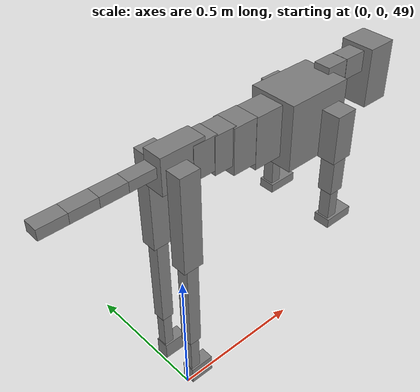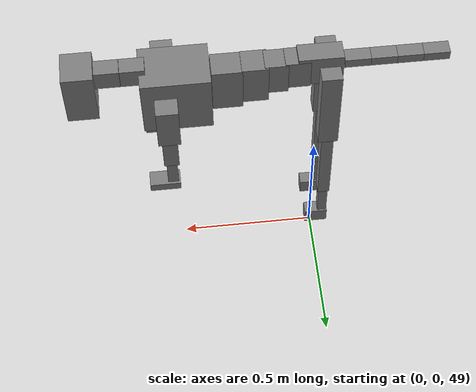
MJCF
<mujoco model="dog">

    <default>
        <joint armature="0.02" stiffness="1" damping="0.2" limited="true"/>
        <geom condim="3" friction="1 0.05 0.05" margin="0.01"/>
        <motor ctrllimited="true" ctrlrange="-1.0 1.0" forcelimited="true" gear="50"/>
    </default>

    <compiler inertiafromgeom="true" angle="radian"/>

    <option timestep="0.016" iterations="50" tolerance="1e-10" solver="Newton" jacobian="dense" cone="pyramidal"/>

    <size nconmax="20000" njmax="60000" nstack="5000000"/>
    <visual>
        <map force="0.1" zfar="30"/>
        <rgba haze="0.15 0.25 0.35 1"/>
        <quality shadowsize="2048"/>
        <global offwidth="800" offheight="800"/>
    </visual>

    <asset>
        <texture type="skybox" builtin="gradient" rgb1="0.3 0.5 0.7" rgb2="0 0 0" width="512" height="512"/>
        <texture name="texplane" type="2d" builtin="checker" rgb1=".2 .3 .4" rgb2=".1 0.15 0.2" width="512" height="512"
                 mark="cross" markrgb=".8 .8 .8"/>
        <texture name="texgeom" type="cube" builtin="flat" mark="cross" width="127" height="1278" rgb1="0.8 0.6 0.4"
                 rgb2="0.8 0.6 0.4" markrgb="1 1 1" random="0.01"/>

        <material name="matplane" reflectance="0.3" texture="texplane" texrepeat="1 1" texuniform="true"/>
        <material name="matgeom" texture="texgeom" texuniform="true" rgba="0.8 0.6 .4 1"/>
    </asset>

    <worldbody>
        <geom name="floor" pos="0 0 0" size="0 0 .25" type="plane" material="matplane" condim="3"/>

        <light directional="false" diffuse=".2 .2 .2" specular="0 0 0" pos="0 0 5" dir="0 0 -1" castshadow="false"/>
        <light mode="targetbodycom" target="torso" directional="false" diffuse=".8 .8 .8" specular="0.3 0.3 0.3"
               pos="0 0 4.0" dir="0 0 -1"/>

        <body name="root" pos="0 0 50">
            <freejoint name="root_1"/>
            <geom type="box" pos="0 0 -0.02" size="0.0774  0.0358  0.063" density="2030"/>

            <body name="spine1" pos="0.054 0 0">
                <joint name="spine1_y" axis="0 1 0" range="0 0.7" limited="true"/>
                <geom type="box" pos="0.02375 0 -0.03" size="0.04375  0.0375  0.05985" density="2030"/>

                <body name="spine2" pos="0.0612 0 0">
                    <joint name="spine2_y" axis="0 1 0" range="-0.15 0.15" limited="true"/>
                    <geom type="box" pos="0.03555  0  -0.04" size="0.04055  0.039  0.06615" density="2030"/>

                    <body name="spine3" pos="0.0730 0 0">
                        <joint name="spine3_y" axis="0 1 0" range="-0.15 0.15" limited="true"/>
                        <geom type="box" pos="0.03555  0  -0.057" size="0.04555  0.0445  0.081" density="2030"/>

                        <body name="spine4" pos="0.0780 0 0">
                            <joint name="spine4_y" axis="0 1 0" range="-0.15 0.15" limited="true"/>
                            <geom type="box" pos="0.05265  0  -0.07" size="0.05265  0.045  0.09135" density="2030"/>

                            <body name="torso" pos="0.1082 0 0">
                                <joint name="torso_y" axis="0 1 0" range="-0.15 0.15" limited="true"/>
                                <geom type="box" pos="0.11925  0  -0.085" size="0.11925  0.085  0.11745"
                                      density="2030"/>

                                <body name="neck1" pos="0.2160  0   0.0180">
                                    <joint name="neck1_y" axis="0 1 0" range="-1.2  -1" limited="true"/>
                                    <geom type="box" pos="0.0423  0  0" size="0.0423  0.03  0.036" density="2325"/>

                                    <body name="neck2" pos="0.0853  0  0">
                                        <joint name="neck2_y" axis="0 1 0" range="0.1  0" limited="true"/>
                                        <geom type="box" pos="0.0423  0  0" size="0.0423  0.03  0.036" density="2325"/>

                                        <body name="head" pos="0.0853  0  0">
                                            <joint name="head_y" axis="0 1 0" range="-0.3  -0.2" limited="true"/>
                                            <geom type="box" pos="0.0531  0  -0.055" size="0.0531  0.06  0.1044"
                                                  density="4030"/>

                                        </body>
                                    </body>
                                </body>

                                <body name="front_shoulder" pos="0.156  0   -0.0480">
                                    <joint name="front_shoulder_y" axis="0 1 0" range="-1 1.5" limited="true"/>
                                    <geom type="box" pos="0 0.13 -0.0582" size="0.0386  0.0330  0.0848" density="1158"/>
                                    <geom type="box" pos="0 -0.13 -0.0582" size="0.0386  0.0330  0.0848"
                                          density="1158"/>

                                    <body name="front_elbow" pos="0  0  -0.1163">
                                        <joint name="front_elbow_y" axis="0 1 0" range="-2 0" limited="true"/>
                                        <geom type="box" pos="0 0.13 -0.0776" size="0.0266  0.0272  0.0776"
                                              density="1081"/>
                                        <geom type="box" pos="0 -0.13 -0.0776" size="0.0266  0.0272  0.0776"
                                              density="1081"/>

                                        <body name="front_wrist" pos="0  0  -0.1551">
                                            <joint name="front_wrist_y" axis="0 1 0" range="-0.2 0" limited="true"/>
                                            <geom type="box" pos="0 0.13 -0.0618" size="0.0188  0.0209  0.0749"
                                                  density="1664"/>
                                            <geom type="box" pos="0 -0.13 -0.0618" size="0.0188  0.0209  0.0749"
                                                  density="1664"/>

                                            <body name="front_finger_end" pos="0  0  -0.1236">
                                                <joint name="front_finger_y" axis="0 1 0" range="-0.4 1"
                                                       limited="true"/>
                                                <geom type="box" pos="0.0297  0.13  -0.0017"
                                                      size="0.0545  0.0297  0.0167" density="1515"/>
                                                <geom type="box" pos="0.0297  -0.13  -0.0017"
                                                      size="0.0545  0.0297  0.0167" density="1515"/>

                                            </body>

                                        </body>
                                    </body>
                                </body>

                            </body>
                        </body>
                    </body>
                </body>
            </body>

            <body name="back_hip" pos="-0.03 0 -0.018">
                <joint name="back_hip_y" axis="0 1 0" range="-1.5 0.3" limited="true"/>
                <geom type="box" pos="0 0.07 -0.1509" size="0.0355  0.0278  0.1737" density="1154"/>
                <geom type="box" pos="0 -0.07 -0.1509" size="0.0355  0.0278  0.1737" density="1154"/>

                <body name="back_knee" pos="0  0  -0.3019">
                    <joint name="back_knee_y" axis="0 1 0" range="0 2.8" limited="true"/>
                    <geom type="box" pos="0 0.07 -0.1688" size="0.0221  0.0217  0.1843" density="1227"/>
                    <geom type="box" pos="0 -0.07 -0.1688" size="0.0221  0.0217  0.1843" density="1227"/>

                    <body name="back_ankle" pos="0  0  -0.3375">
                        <joint name="back_ankle_y" axis="0 1 0" range="-2.2 0" limited="true"/>
                        <geom type="box" pos="0 0.07 -0.0816" size="0.0171  0.0171  0.0929" density="1284"/>
                        <geom type="box" pos="0 -0.07 -0.0816" size="0.0171  0.0171  0.0929" density="1284"/>

                        <body name="back_toe_end" pos="0  0  -0.1632">
                            <joint name="back_toe_y" axis="0 1 0" range="-0.4 1" limited="true"/>
                            <geom type="box" pos="0.0232  0.07  -0.0167" size="0.0425  0.0232  0.0317" density="1515"/>
                            <geom type="box" pos="0.0232  -0.07  -0.0167" size="0.0425  0.0232  0.0317" density="1515"/>

                        </body>
                    </body>
                </body>
            </body>

            <body name="tail1" pos="-0.074 0 -0.006">
                <joint name="tail1_y" axis="0 1 0" range="-0.2 0.2" limited="true"/>
                <geom type="box" pos="-0.0536  0  0" size="0.045  0.025  0.0175" density="1587"/>

                <body name="tail2" pos="-0.09 0 0">
                    <joint name="tail2_y" axis="0 1 0" range="-0.2 0.2" limited="true"/>
                    <geom type="box" pos="-0.0536  0  0" size="0.045  0.025  0.0175" density="1587"/>

                    <body name="tail3" pos="-0.09 0 0">
                        <joint name="tail3_y" axis="0 1 0" range="-0.2 0.2" limited="true"/>
                        <geom type="box" pos="-0.0536  0  0" size="0.045  0.025  0.0175" density="1587"/>

                        <body name="tail4" pos="-0.09 0 0">
                            <joint name="tail4_y" axis="0 1 0" range="-0.2 0.2" limited="true"/>
                            <geom type="box" pos="-0.0536  0  0" size="0.045  0.025  0.0175" density="1587"/>

                        </body>
                    </body>
                </body>
            </body>
        </body>
    </worldbody>

    <actuator>
        <motor joint="spine1_y" forcerange="-150 150     "/>
        <motor joint="spine2_y" forcerange="-150 150     "/>
        <motor joint="spine3_y" forcerange="-150 150     "/>
        <motor joint="spine4_y" forcerange="-150 150     "/>
        <motor joint="torso_y" forcerange="-150 150     "/>
        <motor joint="neck1_y" forcerange="-100 100       "/>
        <motor joint="neck2_y" forcerange="-100 100       "/>
        <motor joint="head_y" forcerange="-150 150       "/>
        <motor joint="front_shoulder_y" forcerange="-156.40 163.71"/>
        <motor joint="front_elbow_y" forcerange="-113.15 184.50"/>
        <motor joint="front_wrist_y" forcerange="-67.22 100.16"/>
        <motor joint="front_finger_y" forcerange="-56.79 61.83"/>
        <motor joint="back_hip_y" forcerange="-342.74 228.40"/>
        <motor joint="back_knee_y" forcerange="-274.39 241.79"/>
        <motor joint="back_angle_y" forcerange="-108.31 65.62"/>
        <motor joint="back_toe_y" forcerange="-28.93 76.64"/>
        <motor joint="tail1_y" forcerange="-50 50     "/>
        <motor joint="tail2_y" forcerange="-50 50     "/>
        <motor joint="tail3_y" forcerange="-50 50     "/>
        <motor joint="tail4_y" forcerange="-50 50     "/>
    </actuator>
</mujoco>
